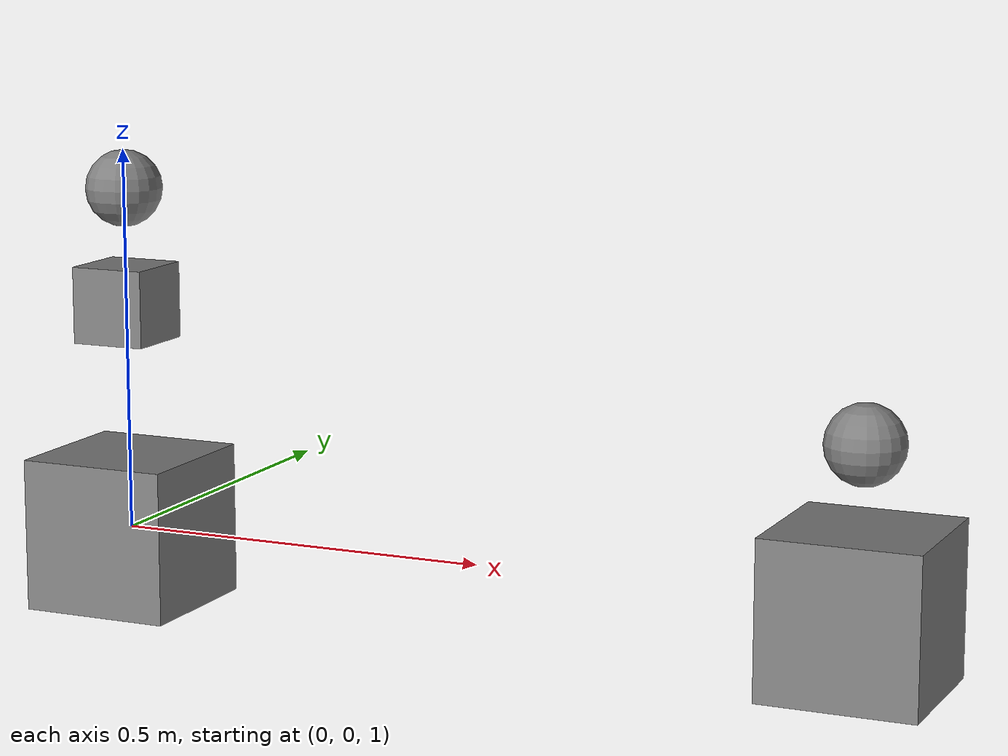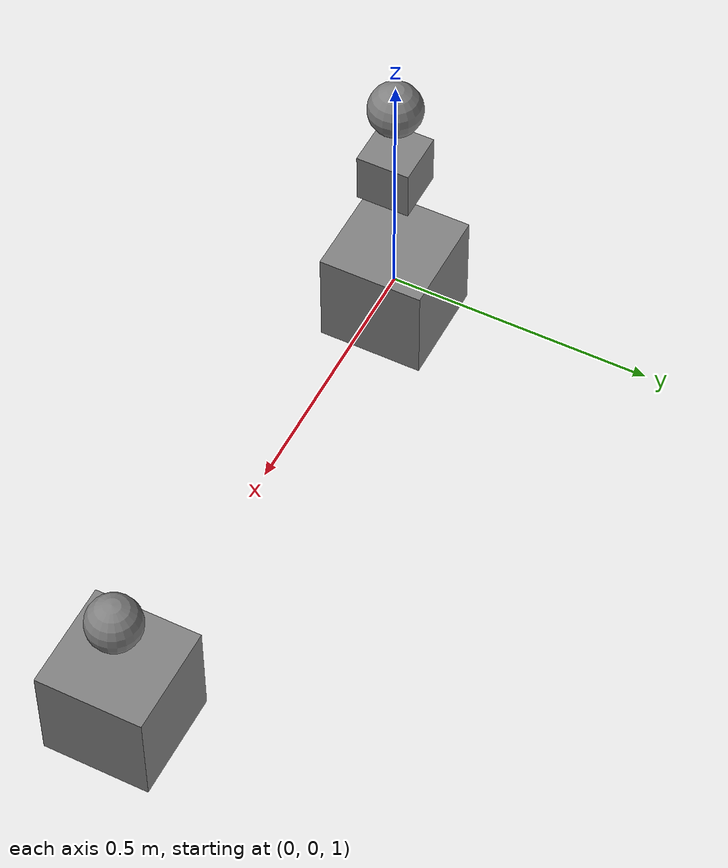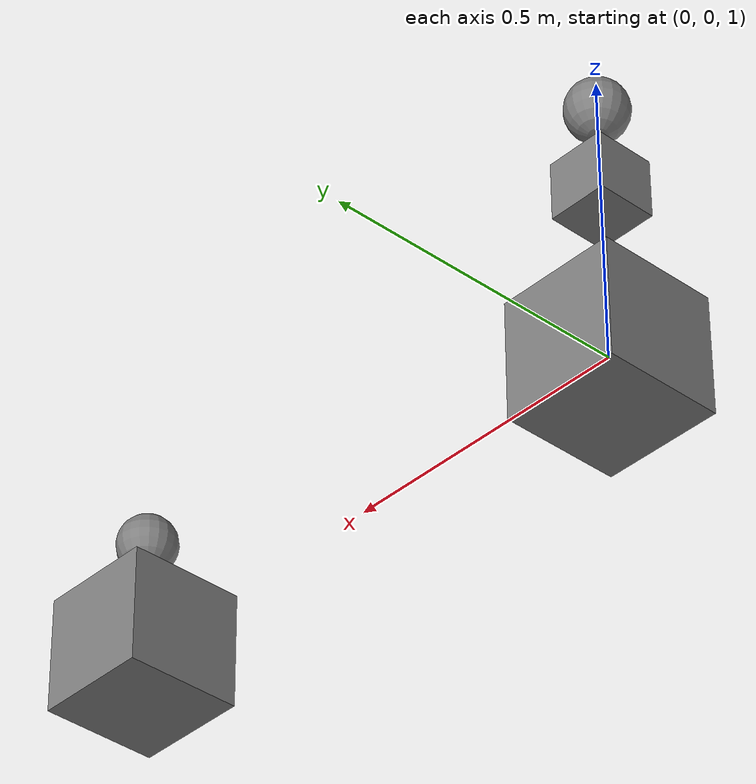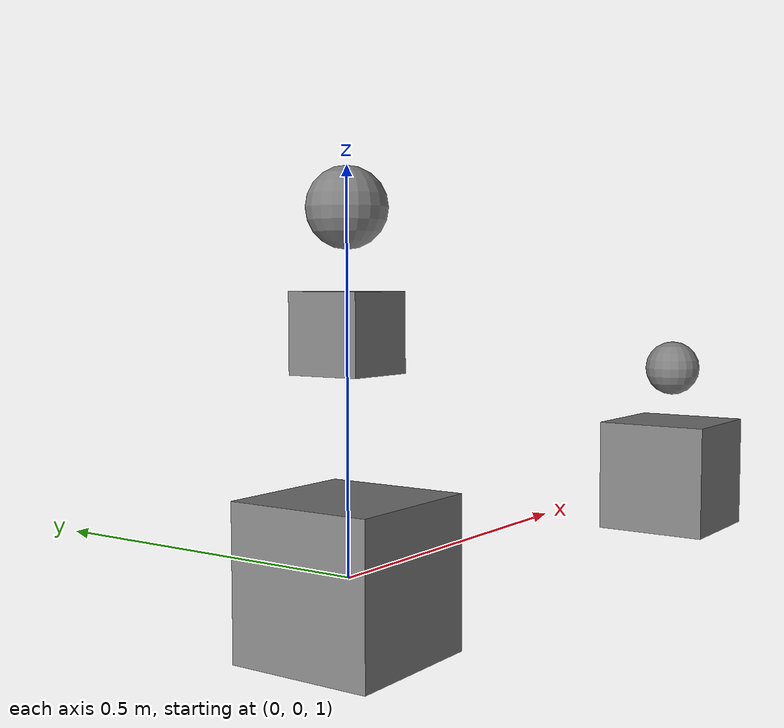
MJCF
<mujoco model="fusestatic">
    <compiler fusestatic="true"/>
    <worldbody>
        <body name="root" pos="0 0 1">
            <freejoint/>
            <geom type="box" size="0.1 0.1 0.1"/>
            <body name="static_child" pos="0 0 0.3">
                <geom type="box" size="0.05 0.05 0.05" mass="0.1"/>
                <geom type="sphere" size="0.05" pos="0 0 0.15" mass="0.1"/>
            </body>
        </body>
        <!-- a second multi-geom body must not repeat the compilation attempt or the warning -->
        <body name="other" pos="1 0 1">
            <freejoint/>
            <geom type="box" size="0.1 0.1 0.1" mass="0.2"/>
            <geom type="sphere" size="0.05" pos="0 0 0.2" mass="0.2"/>
        </body>
    </worldbody>
</mujoco>
